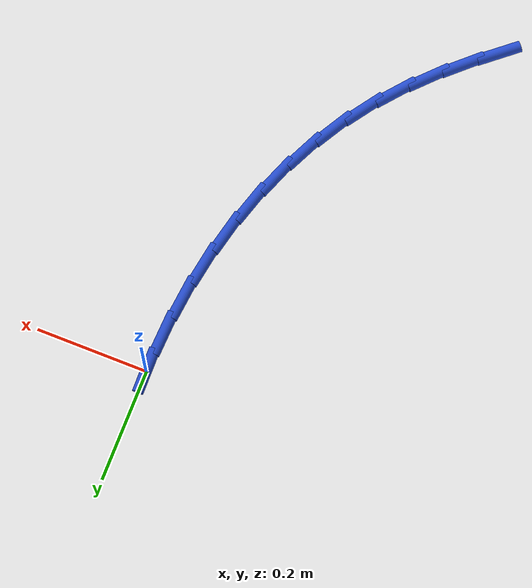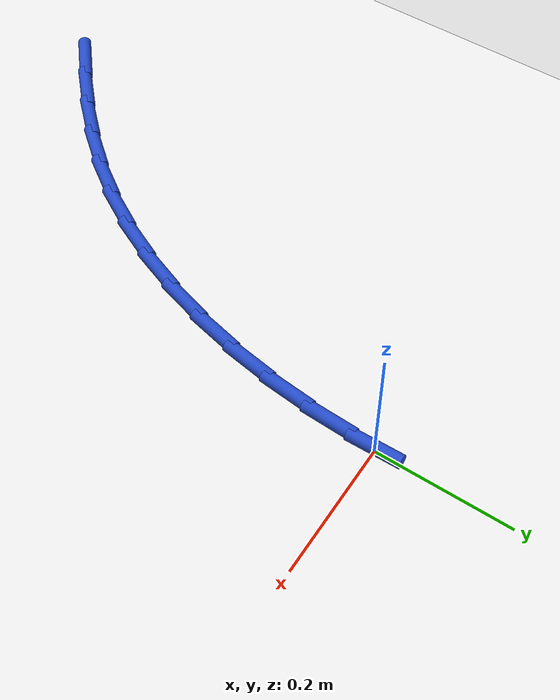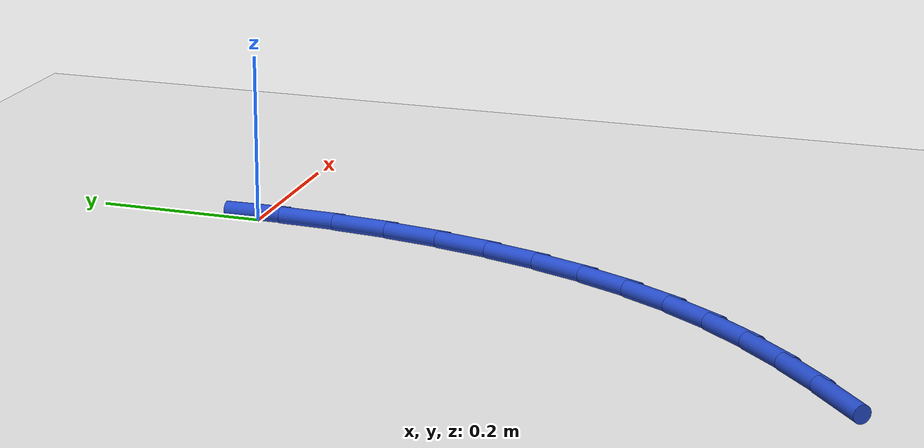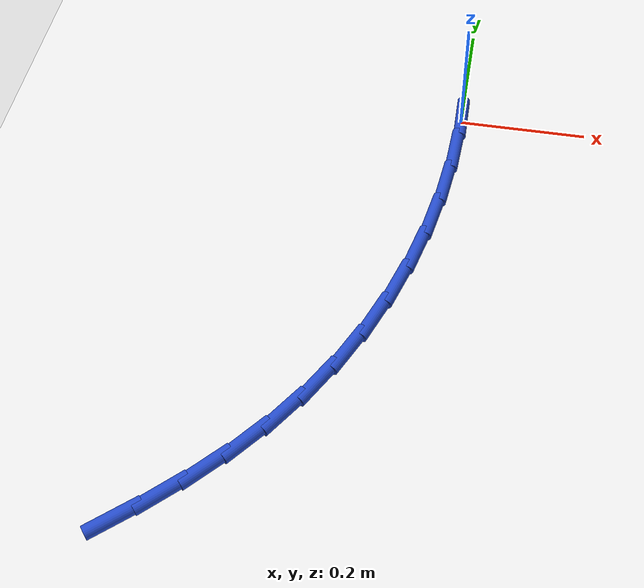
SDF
<sdf version="1.6">
 <world name="default">
  <model name="ground_plane">
   <static>1</static>
   <link name="link">
    <collision name="collision">
     <geometry><plane><normal>0 0 1</normal><size>100 100</size></plane></geometry>
     <surface><friction><ode><mu>100</mu><mu2>50</mu2></ode></friction></surface>
    </collision>
    <visual name="visual">
     <cast_shadows>0</cast_shadows>
     <geometry><plane><normal>0 0 1</normal><size>100 100</size></plane></geometry>
     <material>
      <script><uri>file://media/materials/scripts/gazebo.material</uri><name>Gazebo/WhiteGlow</name></script>
     </material>
    </visual>
   </link>
  </model>
  <model name="line">
   <link name="link_97">
    <pose>-0.35967105251319553 -0.7473219853818052 0.01 0 1.57 0.6954037437599195</pose>
    <collision name="collision">
     <geometry><cylinder><radius>0.01</radius><length>0.08</length></cylinder></geometry>
    </collision>
    <visual name="visual">
     <material>
      <script><name>Gazebo/Blue</name><uri>file://media/materials/scripts/gazebo.material</uri></script>
     </material>
     <geometry><cylinder><radius>0.01</radius><length>0.08</length></cylinder></geometry>
    </visual>
   </link>
   <link name="link_98">
    <pose>-0.3092818838065641 -0.705274161207999 0.01 0 1.57 0.7458681647926997</pose>
    <collision name="collision">
     <geometry><cylinder><radius>0.01</radius><length>0.08</length></cylinder></geometry>
    </collision>
    <visual name="visual">
     <material>
      <script><name>Gazebo/Blue</name><uri>file://media/materials/scripts/gazebo.material</uri></script>
     </material>
     <geometry><cylinder><radius>0.01</radius><length>0.08</length></cylinder></geometry>
    </visual>
   </link>
   <link name="link_99">
    <pose>-0.26193410265234957 -0.6615291546121128 0.01 0 1.57 0.807973760433576</pose>
    <collision name="collision">
     <geometry><cylinder><radius>0.01</radius><length>0.08</length></cylinder></geometry>
    </collision>
    <visual name="visual">
     <material>
      <script><name>Gazebo/Blue</name><uri>file://media/materials/scripts/gazebo.material</uri></script>
     </material>
     <geometry><cylinder><radius>0.01</radius><length>0.08</length></cylinder></geometry>
    </visual>
   </link>
   <link name="link_100">
    <pose>-0.21794564453177145 -0.6155083380971623 0.01 0 1.57 0.8811288112598445</pose>
    <collision name="collision">
     <geometry><cylinder><radius>0.01</radius><length>0.08</length></cylinder></geometry>
    </collision>
    <visual name="visual">
     <material>
      <script><name>Gazebo/Blue</name><uri>file://media/materials/scripts/gazebo.material</uri></script>
     </material>
     <geometry><cylinder><radius>0.01</radius><length>0.08</length></cylinder></geometry>
    </visual>
   </link>
   <link name="link_101">
    <pose>-0.17763444492605138 -0.5666330841661658 0.01 0 1.57 0.9636728541674373</pose>
    <collision name="collision">
     <geometry><cylinder><radius>0.01</radius><length>0.08</length></cylinder></geometry>
    </collision>
    <visual name="visual">
     <material>
      <script><name>Gazebo/Blue</name><uri>file://media/materials/scripts/gazebo.material</uri></script>
     </material>
     <geometry><cylinder><radius>0.01</radius><length>0.08</length></cylinder></geometry>
    </visual>
   </link>
   <link name="link_102">
    <pose>-0.1413119856286202 -0.5143439015799711 0.01 0 1.57 1.0478329198962122</pose>
    <collision name="collision">
     <geometry><cylinder><radius>0.01</radius><length>0.08</length></cylinder></geometry>
    </collision>
    <visual name="visual">
     <material>
      <script><name>Gazebo/Blue</name><uri>file://media/materials/scripts/gazebo.material</uri></script>
     </material>
     <geometry><cylinder><radius>0.01</radius><length>0.08</length></cylinder></geometry>
    </visual>
   </link>
   <link name="link_103">
    <pose>-0.10913719019860682 -0.45853365964143944 0.01 0 1.57 1.1272375225400981</pose>
    <collision name="collision">
     <geometry><cylinder><radius>0.01</radius><length>0.08</length></cylinder></geometry>
    </collision>
    <visual name="visual">
     <material>
      <script><name>Gazebo/Blue</name><uri>file://media/materials/scripts/gazebo.material</uri></script>
     </material>
     <geometry><cylinder><radius>0.01</radius><length>0.08</length></cylinder></geometry>
    </visual>
   </link>
   <link name="link_104">
    <pose>-0.08111409739177965 -0.3995544868596991 0.01 0 1.57 1.2020091634155239</pose>
    <collision name="collision">
     <geometry><cylinder><radius>0.01</radius><length>0.08</length></cylinder></geometry>
    </collision>
    <visual name="visual">
     <material>
      <script><name>Gazebo/Blue</name><uri>file://media/materials/scripts/gazebo.material</uri></script>
     </material>
     <geometry><cylinder><radius>0.01</radius><length>0.08</length></cylinder></geometry>
    </visual>
   </link>
   <link name="link_105">
    <pose>-0.05723982692889407 -0.3377790278336461 0.01 0 1.57 1.2726565992728267</pose>
    <collision name="collision">
     <geometry><cylinder><radius>0.01</radius><length>0.08</length></cylinder></geometry>
    </collision>
    <visual name="visual">
     <material>
      <script><name>Gazebo/Blue</name><uri>file://media/materials/scripts/gazebo.material</uri></script>
     </material>
     <geometry><cylinder><radius>0.01</radius><length>0.08</length></cylinder></geometry>
    </visual>
   </link>
   <link name="link_106">
    <pose>-0.037511498530704276 -0.27357992716217394 0.01 0 1.57 1.3397484483980593</pose>
    <collision name="collision">
     <geometry><cylinder><radius>0.01</radius><length>0.08</length></cylinder></geometry>
    </collision>
    <visual name="visual">
     <material>
      <script><name>Gazebo/Blue</name><uri>file://media/materials/scripts/gazebo.material</uri></script>
     </material>
     <geometry><cylinder><radius>0.01</radius><length>0.08</length></cylinder></geometry>
    </visual>
   </link>
   <link name="link_107">
    <pose>-0.02192623191796543 -0.2073298294441792 0.01 0 1.57 1.4038766905705564</pose>
    <collision name="collision">
     <geometry><cylinder><radius>0.01</radius><length>0.08</length></cylinder></geometry>
    </collision>
    <visual name="visual">
     <material>
      <script><name>Gazebo/Blue</name><uri>file://media/materials/scripts/gazebo.material</uri></script>
     </material>
     <geometry><cylinder><radius>0.01</radius><length>0.08</length></cylinder></geometry>
    </visual>
   </link>
   <link name="link_108">
    <pose>-0.010481146811431863 -0.13940137927855473 0.01 0 1.57 1.465634005173166</pose>
    <collision name="collision">
     <geometry><cylinder><radius>0.01</radius><length>0.08</length></cylinder></geometry>
    </collision>
    <visual name="visual">
     <material>
      <script><name>Gazebo/Blue</name><uri>file://media/materials/scripts/gazebo.material</uri></script>
     </material>
     <geometry><cylinder><radius>0.01</radius><length>0.08</length></cylinder></geometry>
    </visual>
   </link>
   <link name="link_109">
    <pose>-0.0031733629318585806 -0.07016722126419744 0.01 0 1.57 1.5256014058099887</pose>
    <collision name="collision">
     <geometry><cylinder><radius>0.01</radius><length>0.08</length></cylinder></geometry>
    </collision>
    <visual name="visual">
     <material>
      <script><name>Gazebo/Blue</name><uri>file://media/materials/scripts/gazebo.material</uri></script>
     </material>
     <geometry><cylinder><radius>0.01</radius><length>0.08</length></cylinder></geometry>
    </visual>
   </link>
   <link name="link_110">
    <pose>-1.1449174941446927e-16 -2.0816681711721685e-16 0.01 0 1.57 -1.5572497257039601</pose>
    <collision name="collision">
     <geometry><cylinder><radius>0.01</radius><length>0.08</length></cylinder></geometry>
    </collision>
    <visual name="visual">
     <material>
      <script><name>Gazebo/Blue</name><uri>file://media/materials/scripts/gazebo.material</uri></script>
     </material>
     <geometry><cylinder><radius>0.01</radius><length>0.08</length></cylinder></geometry>
    </visual>
   </link>
  </model>
 </world>
</sdf>
